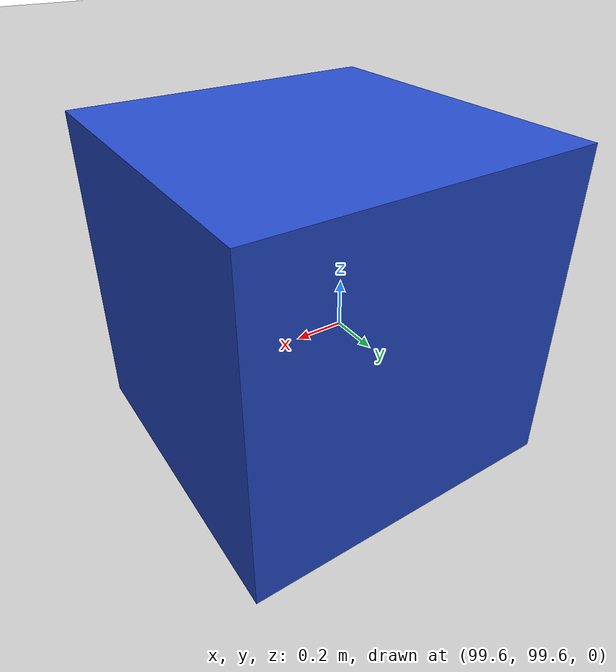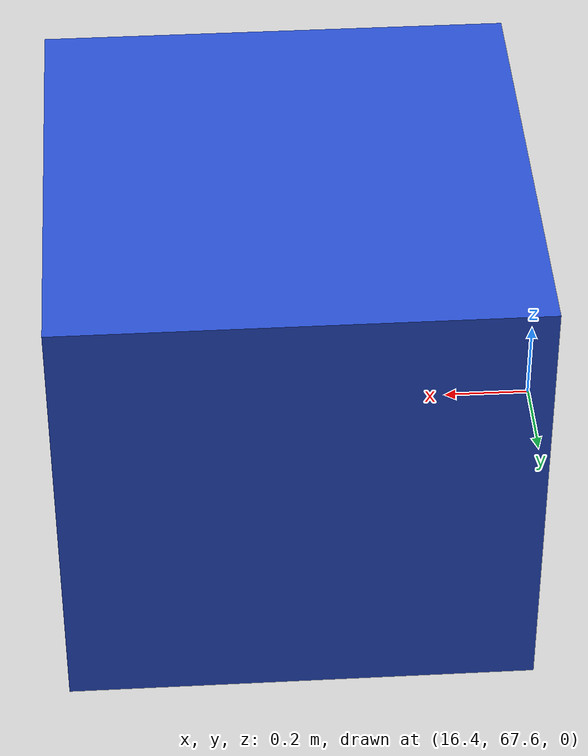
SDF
<?xml version="1.0" ?>
<sdf version="1.5">
  <world name="default">
    <!-- A global light source -->
    <include>
      <uri>model://sun</uri>
    </include>
    <!-- A ground plane -->
    <model name="ground_plane">
      <static>true</static>
      <link name="link">
        <collision name="collision">
          <geometry>
            <plane>
              <normal>0 0 1</normal>
              <size>300 300</size>
            </plane>
          </geometry>
          <surface>
            <friction>
              <ode>
                <mu>100</mu>
                <mu2>50</mu2>
              </ode>
            </friction>
          </surface>
        </collision>
        <visual name="visual">
          <cast_shadows>false</cast_shadows>
          <geometry>
            <plane>
              <normal>0 0 1</normal>
              <size>300 300</size>
            </plane>
          </geometry>
          <material>
            <script>
              <uri>file://media/materials/scripts/gazebo.material</uri>
              <name>Gazebo/Grey</name>
            </script>
          </material>
        </visual>
      </link>
    </model>
    <!-- A unit box ending point -->
    <model name='unit_box_end'>
      <pose frame=''>100 100 0.5 0 -0 0</pose>
      <link name='link'>
        <inertial>
          <mass>1</mass>
          <inertia>
            <ixx>0.166667</ixx>
            <ixy>0</ixy>
            <ixz>0</ixz>
            <iyy>0.166667</iyy>
            <iyz>0</iyz>
            <izz>0.166667</izz>
          </inertia>
        </inertial>
        <collision name='collision'>
          <geometry>
            <box>
              <size>1 1 1</size>
            </box>
          </geometry>
          <max_contacts>10</max_contacts>
          <surface>
            <contact>
              <ode/>
            </contact>
            <bounce/>
            <friction>
              <torsional>
                <ode/>
              </torsional>
              <ode/>
            </friction>
          </surface>
        </collision>
        <visual name='visual'>
          <geometry>
            <box>
              <size>1 1 1</size>
            </box>
          </geometry>
          <material>
            <script>
              <name>Gazebo/Blue</name>
              <uri>file://media/materials/scripts/gazebo.material</uri>
            </script>
          </material>
        </visual>
        <self_collide>0</self_collide>
        <kinematic>0</kinematic>
        <gravity>1</gravity>
      </link>
    </model>

    <model name='unit_box_cp1'>
      <pose frame=''>17 68 0.5 0 -0 0</pose>
      <link name='link'>
        <inertial>
          <mass>1</mass>
          <inertia>
            <ixx>0.166667</ixx>
            <ixy>0</ixy>
            <ixz>0</ixz>
            <iyy>0.166667</iyy>
            <iyz>0</iyz>
            <izz>0.166667</izz>
          </inertia>
        </inertial>
        <collision name='collision'>
          <geometry>
            <box>
              <size>1 1 1</size>
            </box>
          </geometry>
          <max_contacts>10</max_contacts>
          <surface>
            <contact>
              <ode/>
            </contact>
            <bounce/>
            <friction>
              <torsional>
                <ode/>
              </torsional>
              <ode/>
            </friction>
          </surface>
        </collision>
        <visual name='visual'>
          <geometry>
            <box>
              <size>1 1 1</size>
            </box>
          </geometry>
          <material>
            <script>
              <name>Gazebo/Blue</name>
              <uri>file://media/materials/scripts/gazebo.material</uri>
            </script>
          </material>
        </visual>
        <self_collide>0</self_collide>
        <kinematic>0</kinematic>
        <gravity>1</gravity>
      </link>
    </model>

    <model name='unit_box_cp2'>
      <pose frame=''>109 53 0.5 0 -0 0</pose>
      <link name='link'>
        <inertial>
          <mass>1</mass>
          <inertia>
            <ixx>0.166667</ixx>
            <ixy>0</ixy>
            <ixz>0</ixz>
            <iyy>0.166667</iyy>
            <iyz>0</iyz>
            <izz>0.166667</izz>
          </inertia>
        </inertial>
        <collision name='collision'>
          <geometry>
            <box>
              <size>1 1 1</size>
            </box>
          </geometry>
          <max_contacts>10</max_contacts>
          <surface>
            <contact>
              <ode/>
            </contact>
            <bounce/>
            <friction>
              <torsional>
                <ode/>
              </torsional>
              <ode/>
            </friction>
          </surface>
        </collision>
        <visual name='visual'>
          <geometry>
            <box>
              <size>1 1 1</size>
            </box>
          </geometry>
          <material>
            <script>
              <name>Gazebo/Blue</name>
              <uri>file://media/materials/scripts/gazebo.material</uri>
            </script>
          </material>
        </visual>
        <self_collide>0</self_collide>
        <kinematic>0</kinematic>
        <gravity>1</gravity>
      </link>
    </model>
  </world>
</sdf>
